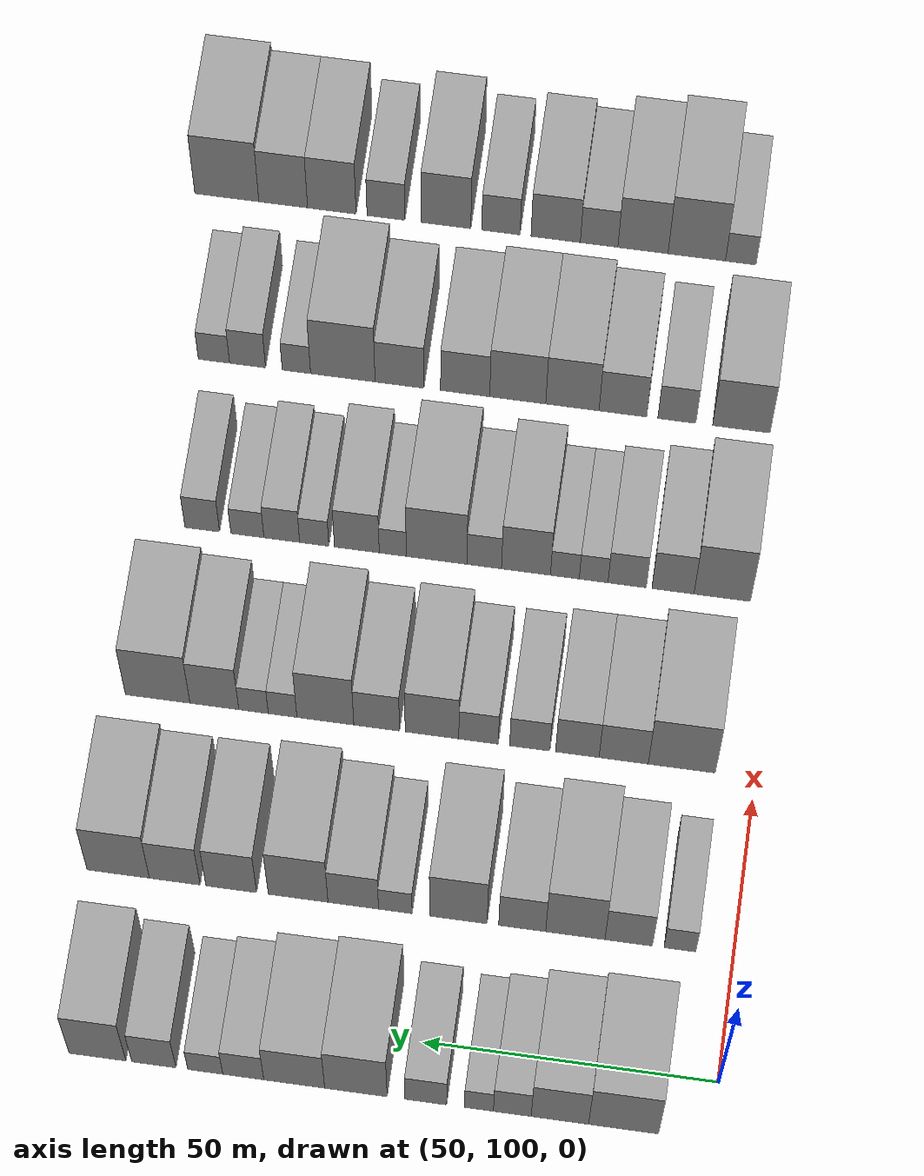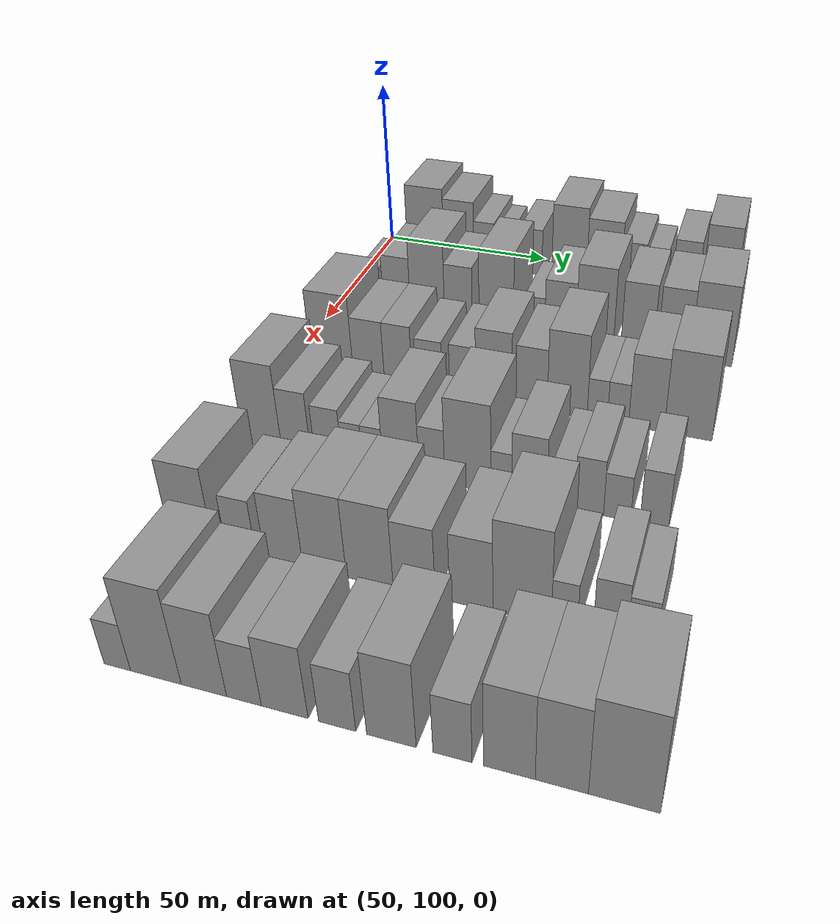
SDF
<sdf version="1.6">
 <world name="default">
  <model name="building_75">
   <static>1</static>
   <pose>50.0000 114.8749 0 0.000000 0.000000 0.000000</pose>
   <link name="link">
    <pose>0 0 12.00 0 0 0</pose>
    <collision name="collision"><geometry><box><size>20.0000 11.7882 24.0000</size></box></geometry></collision>
    <visual name="visual">
     <cast_shadows>0</cast_shadows>
     <geometry><box><size>20.0000 11.7882 24.0000</size></box></geometry>
     <material>
      <script>
       <uri>model://grey_wall/materials/scripts</uri>
       <uri>model://grey_wall/materials/textures</uri>
       <name>vrc/grey_wall</name>
      </script>
     </material>
    </visual>
   </link>
  </model>
  <model name="building_76">
   <static>1</static>
   <pose>50.0000 125.6066 0 0.000000 0.000000 0.000000</pose>
   <link name="link">
    <pose>0 0 10.50 0 0 0</pose>
    <collision name="collision"><geometry><box><size>20.0000 9.6752 21.0000</size></box></geometry></collision>
    <visual name="visual">
     <cast_shadows>0</cast_shadows>
     <geometry><box><size>20.0000 9.6752 21.0000</size></box></geometry>
     <material>
      <script>
       <uri>model://grey_wall/materials/scripts</uri>
       <uri>model://grey_wall/materials/textures</uri>
       <name>vrc/grey_wall</name>
      </script>
     </material>
    </visual>
   </link>
  </model>
  <model name="building_77">
   <static>1</static>
   <pose>50.0000 133.6244 0 0.000000 0.000000 0.000000</pose>
   <link name="link">
    <pose>0 0 7.50 0 0 0</pose>
    <collision name="collision"><geometry><box><size>20.0000 6.3603 15.0000</size></box></geometry></collision>
    <visual name="visual">
     <cast_shadows>0</cast_shadows>
     <geometry><box><size>20.0000 6.3603 15.0000</size></box></geometry>
     <material>
      <script>
       <uri>model://grey_wall/materials/scripts</uri>
       <uri>model://grey_wall/materials/textures</uri>
       <name>vrc/grey_wall</name>
      </script>
     </material>
    </visual>
   </link>
  </model>
  <model name="building_78">
   <static>1</static>
   <pose>50.0000 139.2482 0 0.000000 0.000000 0.000000</pose>
   <link name="link">
    <pose>0 0 6.00 0 0 0</pose>
    <collision name="collision"><geometry><box><size>20.0000 4.8872 12.0000</size></box></geometry></collision>
    <visual name="visual">
     <cast_shadows>0</cast_shadows>
     <geometry><box><size>20.0000 4.8872 12.0000</size></box></geometry>
     <material>
      <script>
       <uri>model://grey_wall/materials/scripts</uri>
       <uri>model://grey_wall/materials/textures</uri>
       <name>vrc/grey_wall</name>
      </script>
     </material>
    </visual>
   </link>
  </model>
  <model name="building_79">
   <static>1</static>
   <pose>50.0000 148.2241 0 0.000000 0.000000 0.000000</pose>
   <link name="link">
    <pose>0 0 7.50 0 0 0</pose>
    <collision name="collision"><geometry><box><size>20.0000 7.0646 15.0000</size></box></geometry></collision>
    <visual name="visual">
     <cast_shadows>0</cast_shadows>
     <geometry><box><size>20.0000 7.0646 15.0000</size></box></geometry>
     <material>
      <script>
       <uri>model://grey_wall/materials/scripts</uri>
       <uri>model://grey_wall/materials/textures</uri>
       <name>vrc/grey_wall</name>
      </script>
     </material>
    </visual>
   </link>
  </model>
  <model name="building_80">
   <static>1</static>
   <pose>50.0000 160.0485 0 0.000000 0.000000 0.000000</pose>
   <link name="link">
    <pose>0 0 12.00 0 0 0</pose>
    <collision name="collision"><geometry><box><size>20.0000 10.5842 24.0000</size></box></geometry></collision>
    <visual name="visual">
     <cast_shadows>0</cast_shadows>
     <geometry><box><size>20.0000 10.5842 24.0000</size></box></geometry>
     <material>
      <script>
       <uri>model://grey_wall/materials/scripts</uri>
       <uri>model://grey_wall/materials/textures</uri>
       <name>vrc/grey_wall</name>
      </script>
     </material>
    </visual>
   </link>
  </model>
  <model name="building_81">
   <static>1</static>
   <pose>50.0000 170.4949 0 0.000000 0.000000 0.000000</pose>
   <link name="link">
    <pose>0 0 10.50 0 0 0</pose>
    <collision name="collision"><geometry><box><size>20.0000 10.3086 21.0000</size></box></geometry></collision>
    <visual name="visual">
     <cast_shadows>0</cast_shadows>
     <geometry><box><size>20.0000 10.3086 21.0000</size></box></geometry>
     <material>
      <script>
       <uri>model://grey_wall/materials/scripts</uri>
       <uri>model://grey_wall/materials/textures</uri>
       <name>vrc/grey_wall</name>
      </script>
     </material>
    </visual>
   </link>
  </model>
  <model name="building_82">
   <static>1</static>
   <pose>50.0000 179.1332 0 0.000000 0.000000 0.000000</pose>
   <link name="link">
    <pose>0 0 7.50 0 0 0</pose>
    <collision name="collision"><geometry><box><size>20.0000 6.9681 15.0000</size></box></geometry></collision>
    <visual name="visual">
     <cast_shadows>0</cast_shadows>
     <geometry><box><size>20.0000 6.9681 15.0000</size></box></geometry>
     <material>
      <script>
       <uri>model://grey_wall/materials/scripts</uri>
       <uri>model://grey_wall/materials/textures</uri>
       <name>vrc/grey_wall</name>
      </script>
     </material>
    </visual>
   </link>
  </model>
  <model name="building_83">
   <static>1</static>
   <pose>50.0000 185.5888 0 0.000000 0.000000 0.000000</pose>
   <link name="link">
    <pose>0 0 6.00 0 0 0</pose>
    <collision name="collision"><geometry><box><size>20.0000 5.9431 12.0000</size></box></geometry></collision>
    <visual name="visual">
     <cast_shadows>0</cast_shadows>
     <geometry><box><size>20.0000 5.9431 12.0000</size></box></geometry>
     <material>
      <script>
       <uri>model://grey_wall/materials/scripts</uri>
       <uri>model://grey_wall/materials/textures</uri>
       <name>vrc/grey_wall</name>
      </script>
     </material>
    </visual>
   </link>
  </model>
  <model name="building_84">
   <static>1</static>
   <pose>50.0000 194.3236 0 0.000000 0.000000 0.000000</pose>
   <link name="link">
    <pose>0 0 9.00 0 0 0</pose>
    <collision name="collision"><geometry><box><size>20.0000 7.5263 18.0000</size></box></geometry></collision>
    <visual name="visual">
     <cast_shadows>0</cast_shadows>
     <geometry><box><size>20.0000 7.5263 18.0000</size></box></geometry>
     <material>
      <script>
       <uri>model://grey_wall/materials/scripts</uri>
       <uri>model://grey_wall/materials/textures</uri>
       <name>vrc/grey_wall</name>
      </script>
     </material>
    </visual>
   </link>
  </model>
  <model name="building_85">
   <static>1</static>
   <pose>50.0000 203.9167 0 0.000000 0.000000 0.000000</pose>
   <link name="link">
    <pose>0 0 12.00 0 0 0</pose>
    <collision name="collision"><geometry><box><size>20.0000 9.6599 24.0000</size></box></geometry></collision>
    <visual name="visual">
     <cast_shadows>0</cast_shadows>
     <geometry><box><size>20.0000 9.6599 24.0000</size></box></geometry>
     <material>
      <script>
       <uri>model://grey_wall/materials/scripts</uri>
       <uri>model://grey_wall/materials/textures</uri>
       <name>vrc/grey_wall</name>
      </script>
     </material>
    </visual>
   </link>
  </model>
  <model name="building_196">
   <static>1</static>
   <pose>82.0000 109.2151 0 0.000000 0.000000 0.000000</pose>
   <link name="link">
    <pose>0 0 6.00 0 0 0</pose>
    <collision name="collision"><geometry><box><size>20.0000 5.4055 12.0000</size></box></geometry></collision>
    <visual name="visual">
     <cast_shadows>0</cast_shadows>
     <geometry><box><size>20.0000 5.4055 12.0000</size></box></geometry>
     <material>
      <script>
       <uri>model://grey_wall/materials/scripts</uri>
       <uri>model://grey_wall/materials/textures</uri>
       <name>vrc/grey_wall</name>
      </script>
     </material>
    </visual>
   </link>
  </model>
  <model name="building_197">
   <static>1</static>
   <pose>82.0000 117.9726 0 0.000000 0.000000 0.000000</pose>
   <link name="link">
    <pose>0 0 9.00 0 0 0</pose>
    <collision name="collision"><geometry><box><size>20.0000 8.1095 18.0000</size></box></geometry></collision>
    <visual name="visual">
     <cast_shadows>0</cast_shadows>
     <geometry><box><size>20.0000 8.1095 18.0000</size></box></geometry>
     <material>
      <script>
       <uri>model://grey_wall/materials/scripts</uri>
       <uri>model://grey_wall/materials/textures</uri>
       <name>vrc/grey_wall</name>
      </script>
     </material>
    </visual>
   </link>
  </model>
  <model name="building_198">
   <static>1</static>
   <pose>82.0000 127.0954 0 0.000000 0.000000 0.000000</pose>
   <link name="link">
    <pose>0 0 12.00 0 0 0</pose>
    <collision name="collision"><geometry><box><size>20.0000 10.1362 24.0000</size></box></geometry></collision>
    <visual name="visual">
     <cast_shadows>0</cast_shadows>
     <geometry><box><size>20.0000 10.1362 24.0000</size></box></geometry>
     <material>
      <script>
       <uri>model://grey_wall/materials/scripts</uri>
       <uri>model://grey_wall/materials/textures</uri>
       <name>vrc/grey_wall</name>
      </script>
     </material>
    </visual>
   </link>
  </model>
  <model name="building_199">
   <static>1</static>
   <pose>82.0000 136.1895 0 0.000000 0.000000 0.000000</pose>
   <link name="link">
    <pose>0 0 9.00 0 0 0</pose>
    <collision name="collision"><geometry><box><size>20.0000 8.0519 18.0000</size></box></geometry></collision>
    <visual name="visual">
     <cast_shadows>0</cast_shadows>
     <geometry><box><size>20.0000 8.0519 18.0000</size></box></geometry>
     <material>
      <script>
       <uri>model://grey_wall/materials/scripts</uri>
       <uri>model://grey_wall/materials/textures</uri>
       <name>vrc/grey_wall</name>
      </script>
     </material>
    </visual>
   </link>
  </model>
  <model name="building_200">
   <static>1</static>
   <pose>82.0000 147.1438 0 0.000000 0.000000 0.000000</pose>
   <link name="link">
    <pose>0 0 12.00 0 0 0</pose>
    <collision name="collision"><geometry><box><size>20.0000 9.8567 24.0000</size></box></geometry></collision>
    <visual name="visual">
     <cast_shadows>0</cast_shadows>
     <geometry><box><size>20.0000 9.8567 24.0000</size></box></geometry>
     <material>
      <script>
       <uri>model://grey_wall/materials/scripts</uri>
       <uri>model://grey_wall/materials/textures</uri>
       <name>vrc/grey_wall</name>
      </script>
     </material>
    </visual>
   </link>
  </model>
  <model name="building_201">
   <static>1</static>
   <pose>82.0000 157.9564 0 0.000000 0.000000 0.000000</pose>
   <link name="link">
    <pose>0 0 6.00 0 0 0</pose>
    <collision name="collision"><geometry><box><size>20.0000 5.7687 12.0000</size></box></geometry></collision>
    <visual name="visual">
     <cast_shadows>0</cast_shadows>
     <geometry><box><size>20.0000 5.7687 12.0000</size></box></geometry>
     <material>
      <script>
       <uri>model://grey_wall/materials/scripts</uri>
       <uri>model://grey_wall/materials/textures</uri>
       <name>vrc/grey_wall</name>
      </script>
     </material>
    </visual>
   </link>
  </model>
  <model name="building_202">
   <static>1</static>
   <pose>82.0000 165.1837 0 0.000000 0.000000 0.000000</pose>
   <link name="link">
    <pose>0 0 9.00 0 0 0</pose>
    <collision name="collision"><geometry><box><size>20.0000 8.6859 18.0000</size></box></geometry></collision>
    <visual name="visual">
     <cast_shadows>0</cast_shadows>
     <geometry><box><size>20.0000 8.6859 18.0000</size></box></geometry>
     <material>
      <script>
       <uri>model://grey_wall/materials/scripts</uri>
       <uri>model://grey_wall/materials/textures</uri>
       <name>vrc/grey_wall</name>
      </script>
     </material>
    </visual>
   </link>
  </model>
  <model name="building_203">
   <static>1</static>
   <pose>82.0000 174.6656 0 0.000000 0.000000 0.000000</pose>
   <link name="link">
    <pose>0 0 12.00 0 0 0</pose>
    <collision name="collision"><geometry><box><size>20.0000 10.2779 24.0000</size></box></geometry></collision>
    <visual name="visual">
     <cast_shadows>0</cast_shadows>
     <geometry><box><size>20.0000 10.2779 24.0000</size></box></geometry>
     <material>
      <script>
       <uri>model://grey_wall/materials/scripts</uri>
       <uri>model://grey_wall/materials/textures</uri>
       <name>vrc/grey_wall</name>
      </script>
     </material>
    </visual>
   </link>
  </model>
  <model name="building_204">
   <static>1</static>
   <pose>82.0000 186.1765 0 0.000000 0.000000 0.000000</pose>
   <link name="link">
    <pose>0 0 10.50 0 0 0</pose>
    <collision name="collision"><geometry><box><size>20.0000 8.7438 21.0000</size></box></geometry></collision>
    <visual name="visual">
     <cast_shadows>0</cast_shadows>
     <geometry><box><size>20.0000 8.7438 21.0000</size></box></geometry>
     <material>
      <script>
       <uri>model://grey_wall/materials/scripts</uri>
       <uri>model://grey_wall/materials/textures</uri>
       <name>vrc/grey_wall</name>
      </script>
     </material>
    </visual>
   </link>
  </model>
  <model name="building_205">
   <static>1</static>
   <pose>82.0000 195.9284 0 0.000000 0.000000 0.000000</pose>
   <link name="link">
    <pose>0 0 10.50 0 0 0</pose>
    <collision name="collision"><geometry><box><size>20.0000 8.7601 21.0000</size></box></geometry></collision>
    <visual name="visual">
     <cast_shadows>0</cast_shadows>
     <geometry><box><size>20.0000 8.7601 21.0000</size></box></geometry>
     <material>
      <script>
       <uri>model://grey_wall/materials/scripts</uri>
       <uri>model://grey_wall/materials/textures</uri>
       <name>vrc/grey_wall</name>
      </script>
     </material>
    </visual>
   </link>
  </model>
  <model name="building_206">
   <static>1</static>
   <pose>82.0000 205.6940 0 0.000000 0.000000 0.000000</pose>
   <link name="link">
    <pose>0 0 12.00 0 0 0</pose>
    <collision name="collision"><geometry><box><size>20.0000 10.7711 24.0000</size></box></geometry></collision>
    <visual name="visual">
     <cast_shadows>0</cast_shadows>
     <geometry><box><size>20.0000 10.7711 24.0000</size></box></geometry>
     <material>
      <script>
       <uri>model://grey_wall/materials/scripts</uri>
       <uri>model://grey_wall/materials/textures</uri>
       <name>vrc/grey_wall</name>
      </script>
     </material>
    </visual>
   </link>
  </model>
  <model name="building_316">
   <static>1</static>
   <pose>114.0000 112.7241 0 0.000000 0.000000 0.000000</pose>
   <link name="link">
    <pose>0 0 12.00 0 0 0</pose>
    <collision name="collision"><geometry><box><size>20.0000 11.6180 24.0000</size></box></geometry></collision>
    <visual name="visual">
     <cast_shadows>0</cast_shadows>
     <geometry><box><size>20.0000 11.6180 24.0000</size></box></geometry>
     <material>
      <script>
       <uri>model://grey_wall/materials/scripts</uri>
       <uri>model://grey_wall/materials/textures</uri>
       <name>vrc/grey_wall</name>
      </script>
     </material>
    </visual>
   </link>
  </model>
  <model name="building_317">
   <static>1</static>
   <pose>114.0000 122.8021 0 0.000000 0.000000 0.000000</pose>
   <link name="link">
    <pose>0 0 9.00 0 0 0</pose>
    <collision name="collision"><geometry><box><size>20.0000 8.5380 18.0000</size></box></geometry></collision>
    <visual name="visual">
     <cast_shadows>0</cast_shadows>
     <geometry><box><size>20.0000 8.5380 18.0000</size></box></geometry>
     <material>
      <script>
       <uri>model://grey_wall/materials/scripts</uri>
       <uri>model://grey_wall/materials/textures</uri>
       <name>vrc/grey_wall</name>
      </script>
     </material>
    </visual>
   </link>
  </model>
  <model name="building_318">
   <static>1</static>
   <pose>114.0000 130.8454 0 0.000000 0.000000 0.000000</pose>
   <link name="link">
    <pose>0 0 9.00 0 0 0</pose>
    <collision name="collision"><geometry><box><size>20.0000 7.5487 18.0000</size></box></geometry></collision>
    <visual name="visual">
     <cast_shadows>0</cast_shadows>
     <geometry><box><size>20.0000 7.5487 18.0000</size></box></geometry>
     <material>
      <script>
       <uri>model://grey_wall/materials/scripts</uri>
       <uri>model://grey_wall/materials/textures</uri>
       <name>vrc/grey_wall</name>
      </script>
     </material>
    </visual>
   </link>
  </model>
  <model name="building_319">
   <static>1</static>
   <pose>114.0000 139.1148 0 0.000000 0.000000 0.000000</pose>
   <link name="link">
    <pose>0 0 7.50 0 0 0</pose>
    <collision name="collision"><geometry><box><size>20.0000 6.9901 15.0000</size></box></geometry></collision>
    <visual name="visual">
     <cast_shadows>0</cast_shadows>
     <geometry><box><size>20.0000 6.9901 15.0000</size></box></geometry>
     <material>
      <script>
       <uri>model://grey_wall/materials/scripts</uri>
       <uri>model://grey_wall/materials/textures</uri>
       <name>vrc/grey_wall</name>
      </script>
     </material>
    </visual>
   </link>
  </model>
  <model name="building_320">
   <static>1</static>
   <pose>114.0000 148.0420 0 0.000000 0.000000 0.000000</pose>
   <link name="link">
    <pose>0 0 7.50 0 0 0</pose>
    <collision name="collision"><geometry><box><size>20.0000 6.8642 15.0000</size></box></geometry></collision>
    <visual name="visual">
     <cast_shadows>0</cast_shadows>
     <geometry><box><size>20.0000 6.8642 15.0000</size></box></geometry>
     <material>
      <script>
       <uri>model://grey_wall/materials/scripts</uri>
       <uri>model://grey_wall/materials/textures</uri>
       <name>vrc/grey_wall</name>
      </script>
     </material>
    </visual>
   </link>
  </model>
  <model name="building_321">
   <static>1</static>
   <pose>114.0000 156.1347 0 0.000000 0.000000 0.000000</pose>
   <link name="link">
    <pose>0 0 10.50 0 0 0</pose>
    <collision name="collision"><geometry><box><size>20.0000 9.3211 21.0000</size></box></geometry></collision>
    <visual name="visual">
     <cast_shadows>0</cast_shadows>
     <geometry><box><size>20.0000 9.3211 21.0000</size></box></geometry>
     <material>
      <script>
       <uri>model://grey_wall/materials/scripts</uri>
       <uri>model://grey_wall/materials/textures</uri>
       <name>vrc/grey_wall</name>
      </script>
     </material>
    </visual>
   </link>
  </model>
  <model name="building_322">
   <static>1</static>
   <pose>114.0000 165.7800 0 0.000000 0.000000 0.000000</pose>
   <link name="link">
    <pose>0 0 9.00 0 0 0</pose>
    <collision name="collision"><geometry><box><size>20.0000 7.9695 18.0000</size></box></geometry></collision>
    <visual name="visual">
     <cast_shadows>0</cast_shadows>
     <geometry><box><size>20.0000 7.9695 18.0000</size></box></geometry>
     <material>
      <script>
       <uri>model://grey_wall/materials/scripts</uri>
       <uri>model://grey_wall/materials/textures</uri>
       <name>vrc/grey_wall</name>
      </script>
     </material>
    </visual>
   </link>
  </model>
  <model name="building_323">
   <static>1</static>
   <pose>114.0000 174.7365 0 0.000000 0.000000 0.000000</pose>
   <link name="link">
    <pose>0 0 12.00 0 0 0</pose>
    <collision name="collision"><geometry><box><size>20.0000 9.9435 24.0000</size></box></geometry></collision>
    <visual name="visual">
     <cast_shadows>0</cast_shadows>
     <geometry><box><size>20.0000 9.9435 24.0000</size></box></geometry>
     <material>
      <script>
       <uri>model://grey_wall/materials/scripts</uri>
       <uri>model://grey_wall/materials/textures</uri>
       <name>vrc/grey_wall</name>
      </script>
     </material>
    </visual>
   </link>
  </model>
  <model name="building_324">
   <static>1</static>
   <pose>114.0000 182.2143 0 0.000000 0.000000 0.000000</pose>
   <link name="link">
    <pose>0 0 6.00 0 0 0</pose>
    <collision name="collision"><geometry><box><size>20.0000 5.0120 12.0000</size></box></geometry></collision>
    <visual name="visual">
     <cast_shadows>0</cast_shadows>
     <geometry><box><size>20.0000 5.0120 12.0000</size></box></geometry>
     <material>
      <script>
       <uri>model://grey_wall/materials/scripts</uri>
       <uri>model://grey_wall/materials/textures</uri>
       <name>vrc/grey_wall</name>
      </script>
     </material>
    </visual>
   </link>
  </model>
  <model name="building_325">
   <static>1</static>
   <pose>114.0000 187.2954 0 0.000000 0.000000 0.000000</pose>
   <link name="link">
    <pose>0 0 6.00 0 0 0</pose>
    <collision name="collision"><geometry><box><size>20.0000 5.1502 12.0000</size></box></geometry></collision>
    <visual name="visual">
     <cast_shadows>0</cast_shadows>
     <geometry><box><size>20.0000 5.1502 12.0000</size></box></geometry>
     <material>
      <script>
       <uri>model://grey_wall/materials/scripts</uri>
       <uri>model://grey_wall/materials/textures</uri>
       <name>vrc/grey_wall</name>
      </script>
     </material>
    </visual>
   </link>
  </model>
  <model name="building_326">
   <static>1</static>
   <pose>114.0000 194.1511 0 0.000000 0.000000 0.000000</pose>
   <link name="link">
    <pose>0 0 10.50 0 0 0</pose>
    <collision name="collision"><geometry><box><size>20.0000 8.5612 21.0000</size></box></geometry></collision>
    <visual name="visual">
     <cast_shadows>0</cast_shadows>
     <geometry><box><size>20.0000 8.5612 21.0000</size></box></geometry>
     <material>
      <script>
       <uri>model://grey_wall/materials/scripts</uri>
       <uri>model://grey_wall/materials/textures</uri>
       <name>vrc/grey_wall</name>
      </script>
     </material>
    </visual>
   </link>
  </model>
  <model name="building_327">
   <static>1</static>
   <pose>114.0000 204.0876 0 0.000000 0.000000 0.000000</pose>
   <link name="link">
    <pose>0 0 12.00 0 0 0</pose>
    <collision name="collision"><geometry><box><size>20.0000 11.3119 24.0000</size></box></geometry></collision>
    <visual name="visual">
     <cast_shadows>0</cast_shadows>
     <geometry><box><size>20.0000 11.3119 24.0000</size></box></geometry>
     <material>
      <script>
       <uri>model://grey_wall/materials/scripts</uri>
       <uri>model://grey_wall/materials/textures</uri>
       <name>vrc/grey_wall</name>
      </script>
     </material>
    </visual>
   </link>
  </model>
  <model name="building_427">
   <static>1</static>
   <pose>146.0000 109.4375 0 0.000000 0.000000 0.000000</pose>
   <link name="link">
    <pose>0 0 12.00 0 0 0</pose>
    <collision name="collision"><geometry><box><size>20.0000 9.9245 24.0000</size></box></geometry></collision>
    <visual name="visual">
     <cast_shadows>0</cast_shadows>
     <geometry><box><size>20.0000 9.9245 24.0000</size></box></geometry>
     <material>
      <script>
       <uri>model://grey_wall/materials/scripts</uri>
       <uri>model://grey_wall/materials/textures</uri>
       <name>vrc/grey_wall</name>
      </script>
     </material>
    </visual>
   </link>
  </model>
  <model name="building_428">
   <static>1</static>
   <pose>146.0000 118.0964 0 0.000000 0.000000 0.000000</pose>
   <link name="link">
    <pose>0 0 9.00 0 0 0</pose>
    <collision name="collision"><geometry><box><size>20.0000 7.3932 18.0000</size></box></geometry></collision>
    <visual name="visual">
     <cast_shadows>0</cast_shadows>
     <geometry><box><size>20.0000 7.3932 18.0000</size></box></geometry>
     <material>
      <script>
       <uri>model://grey_wall/materials/scripts</uri>
       <uri>model://grey_wall/materials/textures</uri>
       <name>vrc/grey_wall</name>
      </script>
     </material>
    </visual>
   </link>
  </model>
  <model name="building_429">
   <static>1</static>
   <pose>146.0000 126.1690 0 0.000000 0.000000 0.000000</pose>
   <link name="link">
    <pose>0 0 7.50 0 0 0</pose>
    <collision name="collision"><geometry><box><size>20.0000 6.7520 15.0000</size></box></geometry></collision>
    <visual name="visual">
     <cast_shadows>0</cast_shadows>
     <geometry><box><size>20.0000 6.7520 15.0000</size></box></geometry>
     <material>
      <script>
       <uri>model://grey_wall/materials/scripts</uri>
       <uri>model://grey_wall/materials/textures</uri>
       <name>vrc/grey_wall</name>
      </script>
     </material>
    </visual>
   </link>
  </model>
  <model name="building_430">
   <static>1</static>
   <pose>146.0000 132.0741 0 0.000000 0.000000 0.000000</pose>
   <link name="link">
    <pose>0 0 6.00 0 0 0</pose>
    <collision name="collision"><geometry><box><size>20.0000 5.0582 12.0000</size></box></geometry></collision>
    <visual name="visual">
     <cast_shadows>0</cast_shadows>
     <geometry><box><size>20.0000 5.0582 12.0000</size></box></geometry>
     <material>
      <script>
       <uri>model://grey_wall/materials/scripts</uri>
       <uri>model://grey_wall/materials/textures</uri>
       <name>vrc/grey_wall</name>
      </script>
     </material>
    </visual>
   </link>
  </model>
  <model name="building_431">
   <static>1</static>
   <pose>146.0000 137.1391 0 0.000000 0.000000 0.000000</pose>
   <link name="link">
    <pose>0 0 6.00 0 0 0</pose>
    <collision name="collision"><geometry><box><size>20.0000 5.0719 12.0000</size></box></geometry></collision>
    <visual name="visual">
     <cast_shadows>0</cast_shadows>
     <geometry><box><size>20.0000 5.0719 12.0000</size></box></geometry>
     <material>
      <script>
       <uri>model://grey_wall/materials/scripts</uri>
       <uri>model://grey_wall/materials/textures</uri>
       <name>vrc/grey_wall</name>
      </script>
     </material>
    </visual>
   </link>
  </model>
  <model name="building_432">
   <static>1</static>
   <pose>146.0000 144.0034 0 0.000000 0.000000 0.000000</pose>
   <link name="link">
    <pose>0 0 10.50 0 0 0</pose>
    <collision name="collision"><geometry><box><size>20.0000 8.6568 21.0000</size></box></geometry></collision>
    <visual name="visual">
     <cast_shadows>0</cast_shadows>
     <geometry><box><size>20.0000 8.6568 21.0000</size></box></geometry>
     <material>
      <script>
       <uri>model://grey_wall/materials/scripts</uri>
       <uri>model://grey_wall/materials/textures</uri>
       <name>vrc/grey_wall</name>
      </script>
     </material>
    </visual>
   </link>
  </model>
  <model name="building_433">
   <static>1</static>
   <pose>146.0000 151.3894 0 0.000000 0.000000 0.000000</pose>
   <link name="link">
    <pose>0 0 7.50 0 0 0</pose>
    <collision name="collision"><geometry><box><size>20.0000 6.1151 15.0000</size></box></geometry></collision>
    <visual name="visual">
     <cast_shadows>0</cast_shadows>
     <geometry><box><size>20.0000 6.1151 15.0000</size></box></geometry>
     <material>
      <script>
       <uri>model://grey_wall/materials/scripts</uri>
       <uri>model://grey_wall/materials/textures</uri>
       <name>vrc/grey_wall</name>
      </script>
     </material>
    </visual>
   </link>
  </model>
  <model name="building_434">
   <static>1</static>
   <pose>146.0000 159.7968 0 0.000000 0.000000 0.000000</pose>
   <link name="link">
    <pose>0 0 12.00 0 0 0</pose>
    <collision name="collision"><geometry><box><size>20.0000 10.6998 24.0000</size></box></geometry></collision>
    <visual name="visual">
     <cast_shadows>0</cast_shadows>
     <geometry><box><size>20.0000 10.6998 24.0000</size></box></geometry>
     <material>
      <script>
       <uri>model://grey_wall/materials/scripts</uri>
       <uri>model://grey_wall/materials/textures</uri>
       <name>vrc/grey_wall</name>
      </script>
     </material>
    </visual>
   </link>
  </model>
  <model name="building_435">
   <static>1</static>
   <pose>146.0000 167.5469 0 0.000000 0.000000 0.000000</pose>
   <link name="link">
    <pose>0 0 6.00 0 0 0</pose>
    <collision name="collision"><geometry><box><size>20.0000 4.8004 12.0000</size></box></geometry></collision>
    <visual name="visual">
     <cast_shadows>0</cast_shadows>
     <geometry><box><size>20.0000 4.8004 12.0000</size></box></geometry>
     <material>
      <script>
       <uri>model://grey_wall/materials/scripts</uri>
       <uri>model://grey_wall/materials/textures</uri>
       <name>vrc/grey_wall</name>
      </script>
     </material>
    </visual>
   </link>
  </model>
  <model name="building_436">
   <static>1</static>
   <pose>146.0000 173.9130 0 0.000000 0.000000 0.000000</pose>
   <link name="link">
    <pose>0 0 9.00 0 0 0</pose>
    <collision name="collision"><geometry><box><size>20.0000 7.9318 18.0000</size></box></geometry></collision>
    <visual name="visual">
     <cast_shadows>0</cast_shadows>
     <geometry><box><size>20.0000 7.9318 18.0000</size></box></geometry>
     <material>
      <script>
       <uri>model://grey_wall/materials/scripts</uri>
       <uri>model://grey_wall/materials/textures</uri>
       <name>vrc/grey_wall</name>
      </script>
     </material>
    </visual>
   </link>
  </model>
  <model name="building_437">
   <static>1</static>
   <pose>146.0000 181.4657 0 0.000000 0.000000 0.000000</pose>
   <link name="link">
    <pose>0 0 6.00 0 0 0</pose>
    <collision name="collision"><geometry><box><size>20.0000 5.1737 12.0000</size></box></geometry></collision>
    <visual name="visual">
     <cast_shadows>0</cast_shadows>
     <geometry><box><size>20.0000 5.1737 12.0000</size></box></geometry>
     <material>
      <script>
       <uri>model://grey_wall/materials/scripts</uri>
       <uri>model://grey_wall/materials/textures</uri>
       <name>vrc/grey_wall</name>
      </script>
     </material>
    </visual>
   </link>
  </model>
  <model name="building_438">
   <static>1</static>
   <pose>146.0000 187.2213 0 0.000000 0.000000 0.000000</pose>
   <link name="link">
    <pose>0 0 7.50 0 0 0</pose>
    <collision name="collision"><geometry><box><size>20.0000 6.3376 15.0000</size></box></geometry></collision>
    <visual name="visual">
     <cast_shadows>0</cast_shadows>
     <geometry><box><size>20.0000 6.3376 15.0000</size></box></geometry>
     <material>
      <script>
       <uri>model://grey_wall/materials/scripts</uri>
       <uri>model://grey_wall/materials/textures</uri>
       <name>vrc/grey_wall</name>
      </script>
     </material>
    </visual>
   </link>
  </model>
  <model name="building_439">
   <static>1</static>
   <pose>146.0000 193.3290 0 0.000000 0.000000 0.000000</pose>
   <link name="link">
    <pose>0 0 6.00 0 0 0</pose>
    <collision name="collision"><geometry><box><size>20.0000 5.8777 12.0000</size></box></geometry></collision>
    <visual name="visual">
     <cast_shadows>0</cast_shadows>
     <geometry><box><size>20.0000 5.8777 12.0000</size></box></geometry>
     <material>
      <script>
       <uri>model://grey_wall/materials/scripts</uri>
       <uri>model://grey_wall/materials/textures</uri>
       <name>vrc/grey_wall</name>
      </script>
     </material>
    </visual>
   </link>
  </model>
  <model name="building_440">
   <static>1</static>
   <pose>146.0000 201.3428 0 0.000000 0.000000 0.000000</pose>
   <link name="link">
    <pose>0 0 7.50 0 0 0</pose>
    <collision name="collision"><geometry><box><size>20.0000 6.1499 15.0000</size></box></geometry></collision>
    <visual name="visual">
     <cast_shadows>0</cast_shadows>
     <geometry><box><size>20.0000 6.1499 15.0000</size></box></geometry>
     <material>
      <script>
       <uri>model://grey_wall/materials/scripts</uri>
       <uri>model://grey_wall/materials/textures</uri>
       <name>vrc/grey_wall</name>
      </script>
     </material>
    </visual>
   </link>
  </model>
  <model name="building_545">
   <static>1</static>
   <pose>178.0000 109.7427 0 0.000000 0.000000 0.000000</pose>
   <link name="link">
    <pose>0 0 10.50 0 0 0</pose>
    <collision name="collision"><geometry><box><size>20.0000 10.2359 21.0000</size></box></geometry></collision>
    <visual name="visual">
     <cast_shadows>0</cast_shadows>
     <geometry><box><size>20.0000 10.2359 21.0000</size></box></geometry>
     <material>
      <script>
       <uri>model://grey_wall/materials/scripts</uri>
       <uri>model://grey_wall/materials/textures</uri>
       <name>vrc/grey_wall</name>
      </script>
     </material>
    </visual>
   </link>
  </model>
  <model name="building_546">
   <static>1</static>
   <pose>178.0000 121.2513 0 0.000000 0.000000 0.000000</pose>
   <link name="link">
    <pose>0 0 7.50 0 0 0</pose>
    <collision name="collision"><geometry><box><size>20.0000 6.7814 15.0000</size></box></geometry></collision>
    <visual name="visual">
     <cast_shadows>0</cast_shadows>
     <geometry><box><size>20.0000 6.7814 15.0000</size></box></geometry>
     <material>
      <script>
       <uri>model://grey_wall/materials/scripts</uri>
       <uri>model://grey_wall/materials/textures</uri>
       <name>vrc/grey_wall</name>
      </script>
     </material>
    </visual>
   </link>
  </model>
  <model name="building_547">
   <static>1</static>
   <pose>178.0000 130.8979 0 0.000000 0.000000 0.000000</pose>
   <link name="link">
    <pose>0 0 9.00 0 0 0</pose>
    <collision name="collision"><geometry><box><size>20.0000 8.5118 18.0000</size></box></geometry></collision>
    <visual name="visual">
     <cast_shadows>0</cast_shadows>
     <geometry><box><size>20.0000 8.5118 18.0000</size></box></geometry>
     <material>
      <script>
       <uri>model://grey_wall/materials/scripts</uri>
       <uri>model://grey_wall/materials/textures</uri>
       <name>vrc/grey_wall</name>
      </script>
     </material>
    </visual>
   </link>
  </model>
  <model name="building_548">
   <static>1</static>
   <pose>178.0000 139.9261 0 0.000000 0.000000 0.000000</pose>
   <link name="link">
    <pose>0 0 10.50 0 0 0</pose>
    <collision name="collision"><geometry><box><size>20.0000 9.5446 21.0000</size></box></geometry></collision>
    <visual name="visual">
     <cast_shadows>0</cast_shadows>
     <geometry><box><size>20.0000 9.5446 21.0000</size></box></geometry>
     <material>
      <script>
       <uri>model://grey_wall/materials/scripts</uri>
       <uri>model://grey_wall/materials/textures</uri>
       <name>vrc/grey_wall</name>
      </script>
     </material>
    </visual>
   </link>
  </model>
  <model name="building_549">
   <static>1</static>
   <pose>178.0000 149.7157 0 0.000000 0.000000 0.000000</pose>
   <link name="link">
    <pose>0 0 10.50 0 0 0</pose>
    <collision name="collision"><geometry><box><size>20.0000 10.0346 21.0000</size></box></geometry></collision>
    <visual name="visual">
     <cast_shadows>0</cast_shadows>
     <geometry><box><size>20.0000 10.0346 21.0000</size></box></geometry>
     <material>
      <script>
       <uri>model://grey_wall/materials/scripts</uri>
       <uri>model://grey_wall/materials/textures</uri>
       <name>vrc/grey_wall</name>
      </script>
     </material>
    </visual>
   </link>
  </model>
  <model name="building_550">
   <static>1</static>
   <pose>178.0000 159.1355 0 0.000000 0.000000 0.000000</pose>
   <link name="link">
    <pose>0 0 9.00 0 0 0</pose>
    <collision name="collision"><geometry><box><size>20.0000 8.8051 18.0000</size></box></geometry></collision>
    <visual name="visual">
     <cast_shadows>0</cast_shadows>
     <geometry><box><size>20.0000 8.8051 18.0000</size></box></geometry>
     <material>
      <script>
       <uri>model://grey_wall/materials/scripts</uri>
       <uri>model://grey_wall/materials/textures</uri>
       <name>vrc/grey_wall</name>
      </script>
     </material>
    </visual>
   </link>
  </model>
  <model name="building_551">
   <static>1</static>
   <pose>178.0000 170.9232 0 0.000000 0.000000 0.000000</pose>
   <link name="link">
    <pose>0 0 9.00 0 0 0</pose>
    <collision name="collision"><geometry><box><size>20.0000 8.7704 18.0000</size></box></geometry></collision>
    <visual name="visual">
     <cast_shadows>0</cast_shadows>
     <geometry><box><size>20.0000 8.7704 18.0000</size></box></geometry>
     <material>
      <script>
       <uri>model://grey_wall/materials/scripts</uri>
       <uri>model://grey_wall/materials/textures</uri>
       <name>vrc/grey_wall</name>
      </script>
     </material>
    </visual>
   </link>
  </model>
  <model name="building_552">
   <static>1</static>
   <pose>178.0000 181.1104 0 0.000000 0.000000 0.000000</pose>
   <link name="link">
    <pose>0 0 12.00 0 0 0</pose>
    <collision name="collision"><geometry><box><size>20.0000 11.6040 24.0000</size></box></geometry></collision>
    <visual name="visual">
     <cast_shadows>0</cast_shadows>
     <geometry><box><size>20.0000 11.6040 24.0000</size></box></geometry>
     <material>
      <script>
       <uri>model://grey_wall/materials/scripts</uri>
       <uri>model://grey_wall/materials/textures</uri>
       <name>vrc/grey_wall</name>
      </script>
     </material>
    </visual>
   </link>
  </model>
  <model name="building_553">
   <static>1</static>
   <pose>178.0000 189.4653 0 0.000000 0.000000 0.000000</pose>
   <link name="link">
    <pose>0 0 6.00 0 0 0</pose>
    <collision name="collision"><geometry><box><size>20.0000 5.1057 12.0000</size></box></geometry></collision>
    <visual name="visual">
     <cast_shadows>0</cast_shadows>
     <geometry><box><size>20.0000 5.1057 12.0000</size></box></geometry>
     <material>
      <script>
       <uri>model://grey_wall/materials/scripts</uri>
       <uri>model://grey_wall/materials/textures</uri>
       <name>vrc/grey_wall</name>
      </script>
     </material>
    </visual>
   </link>
  </model>
  <model name="building_554">
   <static>1</static>
   <pose>178.0000 198.2634 0 0.000000 0.000000 0.000000</pose>
   <link name="link">
    <pose>0 0 7.50 0 0 0</pose>
    <collision name="collision"><geometry><box><size>20.0000 6.4904 15.0000</size></box></geometry></collision>
    <visual name="visual">
     <cast_shadows>0</cast_shadows>
     <geometry><box><size>20.0000 6.4904 15.0000</size></box></geometry>
     <material>
      <script>
       <uri>model://grey_wall/materials/scripts</uri>
       <uri>model://grey_wall/materials/textures</uri>
       <name>vrc/grey_wall</name>
      </script>
     </material>
    </visual>
   </link>
  </model>
  <model name="building_555">
   <static>1</static>
   <pose>178.0000 204.3243 0 0.000000 0.000000 0.000000</pose>
   <link name="link">
    <pose>0 0 6.00 0 0 0</pose>
    <collision name="collision"><geometry><box><size>20.0000 5.6315 12.0000</size></box></geometry></collision>
    <visual name="visual">
     <cast_shadows>0</cast_shadows>
     <geometry><box><size>20.0000 5.6315 12.0000</size></box></geometry>
     <material>
      <script>
       <uri>model://grey_wall/materials/scripts</uri>
       <uri>model://grey_wall/materials/textures</uri>
       <name>vrc/grey_wall</name>
      </script>
     </material>
    </visual>
   </link>
  </model>
  <model name="building_662">
   <static>1</static>
   <pose>210.0000 113.5164 0 0.000000 0.000000 0.000000</pose>
   <link name="link">
    <pose>0 0 6.00 0 0 0</pose>
    <collision name="collision"><geometry><box><size>20.0000 5.5294 12.0000</size></box></geometry></collision>
    <visual name="visual">
     <cast_shadows>0</cast_shadows>
     <geometry><box><size>20.0000 5.5294 12.0000</size></box></geometry>
     <material>
      <script>
       <uri>model://grey_wall/materials/scripts</uri>
       <uri>model://grey_wall/materials/textures</uri>
       <name>vrc/grey_wall</name>
      </script>
     </material>
    </visual>
   </link>
  </model>
  <model name="building_663">
   <static>1</static>
   <pose>210.0000 121.4840 0 0.000000 0.000000 0.000000</pose>
   <link name="link">
    <pose>0 0 12.00 0 0 0</pose>
    <collision name="collision"><geometry><box><size>20.0000 10.4060 24.0000</size></box></geometry></collision>
    <visual name="visual">
     <cast_shadows>0</cast_shadows>
     <geometry><box><size>20.0000 10.4060 24.0000</size></box></geometry>
     <material>
      <script>
       <uri>model://grey_wall/materials/scripts</uri>
       <uri>model://grey_wall/materials/textures</uri>
       <name>vrc/grey_wall</name>
      </script>
     </material>
    </visual>
   </link>
  </model>
  <model name="building_664">
   <static>1</static>
   <pose>210.0000 131.2310 0 0.000000 0.000000 0.000000</pose>
   <link name="link">
    <pose>0 0 10.50 0 0 0</pose>
    <collision name="collision"><geometry><box><size>20.0000 9.0879 21.0000</size></box></geometry></collision>
    <visual name="visual">
     <cast_shadows>0</cast_shadows>
     <geometry><box><size>20.0000 9.0879 21.0000</size></box></geometry>
     <material>
      <script>
       <uri>model://grey_wall/materials/scripts</uri>
       <uri>model://grey_wall/materials/textures</uri>
       <name>vrc/grey_wall</name>
      </script>
     </material>
    </visual>
   </link>
  </model>
  <model name="building_665">
   <static>1</static>
   <pose>210.0000 139.1829 0 0.000000 0.000000 0.000000</pose>
   <link name="link">
    <pose>0 0 7.50 0 0 0</pose>
    <collision name="collision"><geometry><box><size>20.0000 6.8160 15.0000</size></box></geometry></collision>
    <visual name="visual">
     <cast_shadows>0</cast_shadows>
     <geometry><box><size>20.0000 6.8160 15.0000</size></box></geometry>
     <material>
      <script>
       <uri>model://grey_wall/materials/scripts</uri>
       <uri>model://grey_wall/materials/textures</uri>
       <name>vrc/grey_wall</name>
      </script>
     </material>
    </visual>
   </link>
  </model>
  <model name="building_666">
   <static>1</static>
   <pose>210.0000 147.0688 0 0.000000 0.000000 0.000000</pose>
   <link name="link">
    <pose>0 0 9.00 0 0 0</pose>
    <collision name="collision"><geometry><box><size>20.0000 8.9557 18.0000</size></box></geometry></collision>
    <visual name="visual">
     <cast_shadows>0</cast_shadows>
     <geometry><box><size>20.0000 8.9557 18.0000</size></box></geometry>
     <material>
      <script>
       <uri>model://grey_wall/materials/scripts</uri>
       <uri>model://grey_wall/materials/textures</uri>
       <name>vrc/grey_wall</name>
      </script>
     </material>
    </visual>
   </link>
  </model>
  <model name="building_667">
   <static>1</static>
   <pose>210.0000 157.0214 0 0.000000 0.000000 0.000000</pose>
   <link name="link">
    <pose>0 0 7.50 0 0 0</pose>
    <collision name="collision"><geometry><box><size>20.0000 6.9495 15.0000</size></box></geometry></collision>
    <visual name="visual">
     <cast_shadows>0</cast_shadows>
     <geometry><box><size>20.0000 6.9495 15.0000</size></box></geometry>
     <material>
      <script>
       <uri>model://grey_wall/materials/scripts</uri>
       <uri>model://grey_wall/materials/textures</uri>
       <name>vrc/grey_wall</name>
      </script>
     </material>
    </visual>
   </link>
  </model>
  <model name="building_668">
   <static>1</static>
   <pose>210.0000 167.0008 0 0.000000 0.000000 0.000000</pose>
   <link name="link">
    <pose>0 0 10.50 0 0 0</pose>
    <collision name="collision"><geometry><box><size>20.0000 9.0093 21.0000</size></box></geometry></collision>
    <visual name="visual">
     <cast_shadows>0</cast_shadows>
     <geometry><box><size>20.0000 9.0093 21.0000</size></box></geometry>
     <material>
      <script>
       <uri>model://grey_wall/materials/scripts</uri>
       <uri>model://grey_wall/materials/textures</uri>
       <name>vrc/grey_wall</name>
      </script>
     </material>
    </visual>
   </link>
  </model>
  <model name="building_669">
   <static>1</static>
   <pose>210.0000 177.9538 0 0.000000 0.000000 0.000000</pose>
   <link name="link">
    <pose>0 0 7.50 0 0 0</pose>
    <collision name="collision"><geometry><box><size>20.0000 6.8967 15.0000</size></box></geometry></collision>
    <visual name="visual">
     <cast_shadows>0</cast_shadows>
     <geometry><box><size>20.0000 6.8967 15.0000</size></box></geometry>
     <material>
      <script>
       <uri>model://grey_wall/materials/scripts</uri>
       <uri>model://grey_wall/materials/textures</uri>
       <name>vrc/grey_wall</name>
      </script>
     </material>
    </visual>
   </link>
  </model>
  <model name="building_670">
   <static>1</static>
   <pose>210.0000 187.8345 0 0.000000 0.000000 0.000000</pose>
   <link name="link">
    <pose>0 0 10.50 0 0 0</pose>
    <collision name="collision"><geometry><box><size>20.0000 8.8649 21.0000</size></box></geometry></collision>
    <visual name="visual">
     <cast_shadows>0</cast_shadows>
     <geometry><box><size>20.0000 8.8649 21.0000</size></box></geometry>
     <material>
      <script>
       <uri>model://grey_wall/materials/scripts</uri>
       <uri>model://grey_wall/materials/textures</uri>
       <name>vrc/grey_wall</name>
      </script>
     </material>
    </visual>
   </link>
  </model>
  <model name="building_671">
   <static>1</static>
   <pose>210.0000 196.7168 0 0.000000 0.000000 0.000000</pose>
   <link name="link">
    <pose>0 0 10.50 0 0 0</pose>
    <collision name="collision"><geometry><box><size>20.0000 8.8997 21.0000</size></box></geometry></collision>
    <visual name="visual">
     <cast_shadows>0</cast_shadows>
     <geometry><box><size>20.0000 8.8997 21.0000</size></box></geometry>
     <material>
      <script>
       <uri>model://grey_wall/materials/scripts</uri>
       <uri>model://grey_wall/materials/textures</uri>
       <name>vrc/grey_wall</name>
      </script>
     </material>
    </visual>
   </link>
  </model>
  <model name="building_672">
   <static>1</static>
   <pose>210.0000 207.0211 0 0.000000 0.000000 0.000000</pose>
   <link name="link">
    <pose>0 0 12.00 0 0 0</pose>
    <collision name="collision"><geometry><box><size>20.0000 11.7089 24.0000</size></box></geometry></collision>
    <visual name="visual">
     <cast_shadows>0</cast_shadows>
     <geometry><box><size>20.0000 11.7089 24.0000</size></box></geometry>
     <material>
      <script>
       <uri>model://grey_wall/materials/scripts</uri>
       <uri>model://grey_wall/materials/textures</uri>
       <name>vrc/grey_wall</name>
      </script>
     </material>
    </visual>
   </link>
  </model>
 </world>
</sdf>
